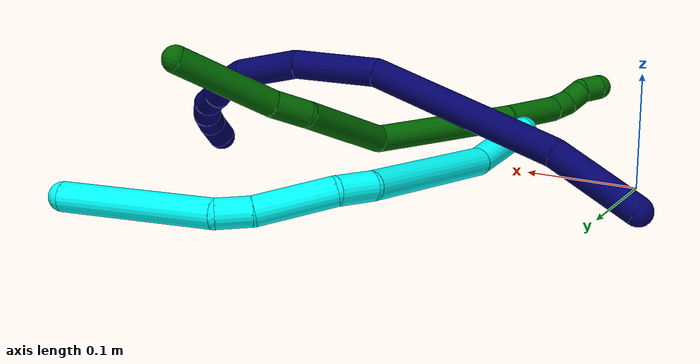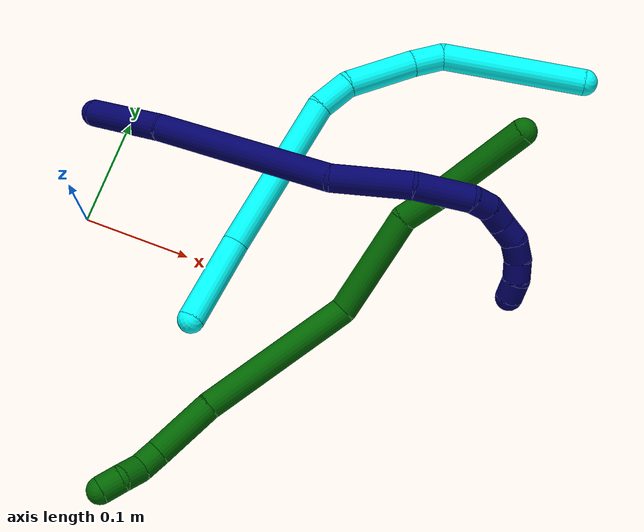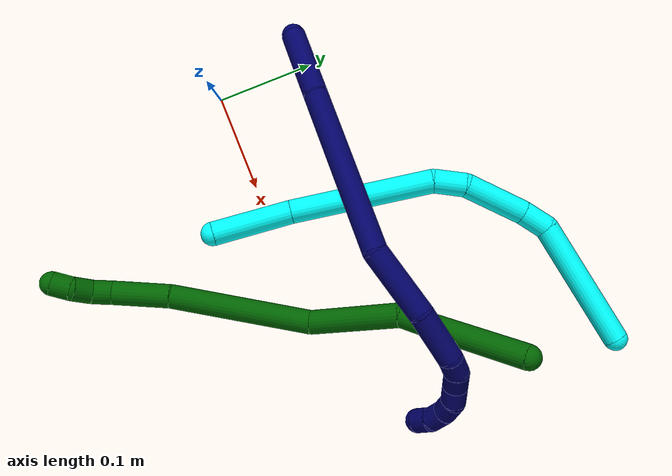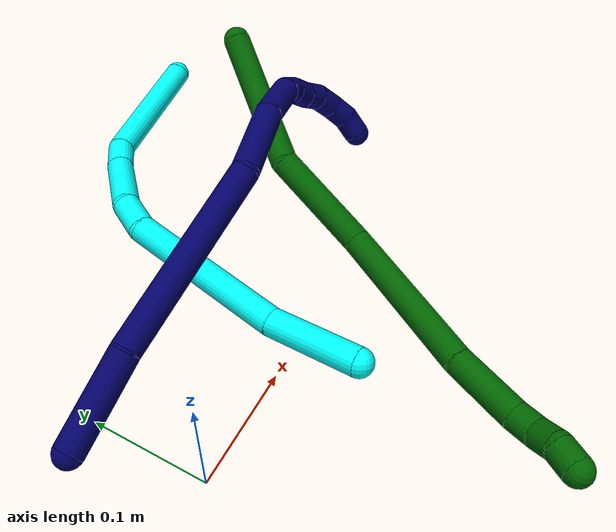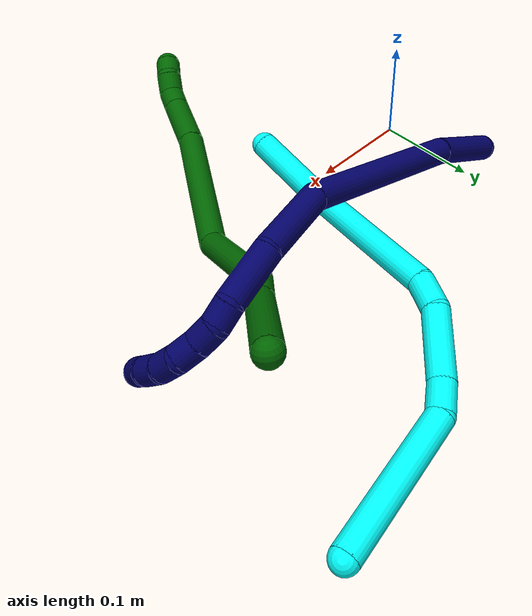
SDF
<sdf version="1.7">
 <world name="default">
  <model name="photoneo_s_sensor">
   <static>1</static>
   <pose>0 0 2 1.57079 1.57079 3.14159</pose>
   <link name="link">
    <inertial><mass>0.1</mass></inertial>
    <sensor name="sensor" type="depth">
     <update_rate>30</update_rate>
     <camera>
      <horizontal_fov>1.22</horizontal_fov>
      <image><width>1920</width><height>1200</height><format>B8G8R8</format></image>
      <clip><near>0.1</near><far>4</far></clip>
      <depth_camera><output>points</output></depth_camera>
     </camera>
     <plugin name="camera_plugin" filename="libgazebo_ros_depth_camera.so">
      <baseline>0.2</baseline>
      <alwaysOn>1</alwaysOn>
      <updateRate>0.0</updateRate>
      <cameraName>camera_ir</cameraName>
      <imageTopicName>/camera/color/image_raw</imageTopicName>
      <cameraInfoTopicName>/camera/color/camera_info</cameraInfoTopicName>
      <depthImageTopicName>/camera/depth/image_raw</depthImageTopicName>
      <depthImageCameraInfoTopicName>/camera/depth/camera_info</depthImageCameraInfoTopicName>
      <pointCloudTopicName>/camera/depth/points</pointCloudTopicName>
      <frameName>fr_optical</frameName>
      <pointCloudCutoff>0.1</pointCloudCutoff>
      <pointCloudCutoffMax>2.0</pointCloudCutoffMax>
      <distortionK1>0</distortionK1>
      <distortionK2>0</distortionK2>
      <distortionK3>0</distortionK3>
      <distortionT1>0</distortionT1>
      <distortionT2>0</distortionT2>
      <CxPrime>0</CxPrime>
      <Cx>0</Cx>
      <Cy>0</Cy>
      <focalLength>0</focalLength>
      <hackBaseline>0</hackBaseline>
     </plugin>
    </sensor>
   </link>
  </model>
  <model name="bin">
   <static>1</static>
   <link name="bottom">
    <collision name="collision-bottom">
     <pose>0 0 -0.01 0 -0 0</pose>
     <geometry><box><size>0.8 0.6 0.02</size></box></geometry>
     <surface>
      <friction><ode><mu>100</mu><mu2>100</mu2></ode></friction>
      <contact><collide_bitmask>65535</collide_bitmask></contact>
     </surface>
    </collision>
   </link>
   <link name="west_wall">
    <collision name="collision-west_wall">
     <pose>-0.41 0 0.1 0 -0 0</pose>
     <geometry><box><size>0.02 0.6 0.2</size></box></geometry>
     <surface>
      <friction><ode><mu>100</mu><mu2>100</mu2></ode></friction>
      <contact><collide_bitmask>65535</collide_bitmask></contact>
     </surface>
    </collision>
   </link>
   <link name="east_wall">
    <collision name="collision-east_wall">
     <pose>0.41 0 0.1 0 -0 0</pose>
     <geometry><box><size>0.02 0.6 0.2</size></box></geometry>
     <surface>
      <friction><ode><mu>100</mu><mu2>100</mu2></ode></friction>
      <contact><collide_bitmask>65535</collide_bitmask></contact>
     </surface>
    </collision>
   </link>
   <link name="south_wall">
    <collision name="collision-south_wall">
     <pose>0 -0.31 0.1 0 -0 0</pose>
     <geometry><box><size>0.8 0.02 0.2</size></box></geometry>
     <surface>
      <friction><ode><mu>100</mu><mu2>100</mu2></ode></friction>
      <contact><collide_bitmask>65535</collide_bitmask></contact>
     </surface>
    </collision>
   </link>
   <link name="north_wall">
    <collision name="collision-north_wall">
     <pose>0 0.31 0.1 0 -0 0</pose>
     <geometry><box><size>0.8 0.02 0.2</size></box></geometry>
     <surface>
      <friction><ode><mu>100</mu><mu2>100</mu2></ode></friction>
      <contact><collide_bitmask>65535</collide_bitmask></contact>
     </surface>
    </collision>
   </link>
  </model>
  <model name="3">
   <static>0</static>
   <link name="3">
    <collision name="collision-cylinder-e_1_1_4">
     <pose>-0.025022 0.033314 -0.004319 -1.69972 -0.640206 0.721491</pose>
     <geometry><cylinder><radius>0.0125</radius><length>0.083776</length></cylinder></geometry>
     <surface>
      <friction><ode><mu>1.16</mu><mu2>1.16</mu2><slip1>0</slip1><slip2>0</slip2></ode></friction>
      <contact><ode><kp>1e+06</kp><kd>1</kd><max_vel>0</max_vel><min_depth>0.001</min_depth></ode></contact>
     </surface>
    </collision>
    <visual name="visual-cylinder-e_1_1_4">
     <pose>-0.025022 0.033314 -0.004319 -1.69972 -0.640206 0.721491</pose>
     <geometry><cylinder><radius>0.0125</radius><length>0.083776</length></cylinder></geometry>
     <material><ambient>0.003922 1 0.996078 1</ambient></material>
    </visual>
    <collision name="collision-cylinder-e_2_4_5">
     <pose>-0.091348 0.124429 -0.033437 -1.9761 -0.581064 0.851745</pose>
     <geometry><cylinder><radius>0.0125</radius><length>0.15049</length></cylinder></geometry>
     <surface>
      <friction><ode><mu>1.16</mu><mu2>1.16</mu2><slip1>0</slip1><slip2>0</slip2></ode></friction>
      <contact><ode><kp>1e+06</kp><kd>1</kd><max_vel>0</max_vel><min_depth>0.001</min_depth></ode></contact>
     </surface>
    </collision>
    <visual name="visual-cylinder-e_2_4_5">
     <pose>-0.091348 0.124429 -0.033437 -1.9761 -0.581064 0.851745</pose>
     <geometry><cylinder><radius>0.0125</radius><length>0.15049</length></cylinder></geometry>
     <material><ambient>0.003922 1 0.996078 1</ambient></material>
    </visual>
    <collision name="collision-cylinder-e_3_5_6">
     <pose>-0.145451 0.190828 -0.064892 -2.22944 -0.8666 1.51216</pose>
     <geometry><cylinder><radius>0.0125</radius><length>0.033592</length></cylinder></geometry>
     <surface>
      <friction><ode><mu>1.16</mu><mu2>1.16</mu2><slip1>0</slip1><slip2>0</slip2></ode></friction>
      <contact><ode><kp>1e+06</kp><kd>1</kd><max_vel>0</max_vel><min_depth>0.001</min_depth></ode></contact>
     </surface>
    </collision>
    <visual name="visual-cylinder-e_3_5_6">
     <pose>-0.145451 0.190828 -0.064892 -2.22944 -0.8666 1.51216</pose>
     <geometry><cylinder><radius>0.0125</radius><length>0.033592</length></cylinder></geometry>
     <material><ambient>0.003922 1 0.996078 1</ambient></material>
    </visual>
    <collision name="collision-cylinder-e_4_6_7">
     <pose>-0.189661 0.206951 -0.080785 -2.45817 -1.20825 2.18997</pose>
     <geometry><cylinder><radius>0.0125</radius><length>0.067184</length></cylinder></geometry>
     <surface>
      <friction><ode><mu>1.16</mu><mu2>1.16</mu2><slip1>0</slip1><slip2>0</slip2></ode></friction>
      <contact><ode><kp>1e+06</kp><kd>1</kd><max_vel>0</max_vel><min_depth>0.001</min_depth></ode></contact>
     </surface>
    </collision>
    <visual name="visual-cylinder-e_4_6_7">
     <pose>-0.189661 0.206951 -0.080785 -2.45817 -1.20825 2.18997</pose>
     <geometry><cylinder><radius>0.0125</radius><length>0.067184</length></cylinder></geometry>
     <material><ambient>0.003922 1 0.996078 1</ambient></material>
    </visual>
    <collision name="collision-cylinder-e_5_7_8">
     <pose>-0.234577 0.215945 -0.096362 -2.91355 -1.12191 2.781</pose>
     <geometry><cylinder><radius>0.0125</radius><length>0.029988</length></cylinder></geometry>
     <surface>
      <friction><ode><mu>1.16</mu><mu2>1.16</mu2><slip1>0</slip1><slip2>0</slip2></ode></friction>
      <contact><ode><kp>1e+06</kp><kd>1</kd><max_vel>0</max_vel><min_depth>0.001</min_depth></ode></contact>
     </surface>
    </collision>
    <visual name="visual-cylinder-e_5_7_8">
     <pose>-0.234577 0.215945 -0.096362 -2.91355 -1.12191 2.781</pose>
     <geometry><cylinder><radius>0.0125</radius><length>0.029988</length></cylinder></geometry>
     <material><ambient>0.003922 1 0.996078 1</ambient></material>
    </visual>
    <collision name="collision-cylinder-e_6_8_2">
     <pose>-0.303803 0.194037 -0.132755 2.4805 -0.971296 -1.98868</pose>
     <geometry><cylinder><radius>0.0125</radius><length>0.13497</length></cylinder></geometry>
     <surface>
      <friction><ode><mu>1.16</mu><mu2>1.16</mu2><slip1>0</slip1><slip2>0</slip2></ode></friction>
      <contact><ode><kp>1e+06</kp><kd>1</kd><max_vel>0</max_vel><min_depth>0.001</min_depth></ode></contact>
     </surface>
    </collision>
    <visual name="visual-cylinder-e_6_8_2">
     <pose>-0.303803 0.194037 -0.132755 2.4805 -0.971296 -1.98868</pose>
     <geometry><cylinder><radius>0.0125</radius><length>0.13497</length></cylinder></geometry>
     <material><ambient>0.003922 1 0.996078 1</ambient></material>
    </visual>
    <collision name="collision-sphere-2">
     <pose>-0.359519 0.170658 -0.16281 0 -0 0</pose>
     <geometry><sphere><radius>0.0125</radius></sphere></geometry>
     <surface>
      <friction><ode><mu>1.16</mu><mu2>1.16</mu2><slip1>0</slip1><slip2>0</slip2></ode></friction>
      <contact><ode><kp>1e+06</kp><kd>1</kd><max_vel>0</max_vel><min_depth>0.001</min_depth></ode></contact>
     </surface>
    </collision>
    <visual name="visual-sphere-2">
     <pose>-0.359519 0.170658 -0.16281 0 -0 0</pose>
     <geometry><sphere><radius>0.0125</radius></sphere></geometry>
     <material><ambient>0.003922 1 0.996078 1</ambient></material>
    </visual>
    <collision name="collision-sphere-4">
     <pose>-0.050045 0.066629 -0.008638 0 -0 0</pose>
     <geometry><sphere><radius>0.0125</radius></sphere></geometry>
     <surface>
      <friction><ode><mu>1.16</mu><mu2>1.16</mu2><slip1>0</slip1><slip2>0</slip2></ode></friction>
      <contact><ode><kp>1e+06</kp><kd>1</kd><max_vel>0</max_vel><min_depth>0.001</min_depth></ode></contact>
     </surface>
    </collision>
    <visual name="visual-sphere-4">
     <pose>-0.050045 0.066629 -0.008638 0 -0 0</pose>
     <geometry><sphere><radius>0.0125</radius></sphere></geometry>
     <material><ambient>0.003922 1 0.996078 1</ambient></material>
    </visual>
    <collision name="collision-sphere-1">
     <geometry><sphere><radius>0.0125</radius></sphere></geometry>
     <surface>
      <friction><ode><mu>1.16</mu><mu2>1.16</mu2><slip1>0</slip1><slip2>0</slip2></ode></friction>
      <contact><ode><kp>1e+06</kp><kd>1</kd><max_vel>0</max_vel><min_depth>0.001</min_depth></ode></contact>
     </surface>
    </collision>
    <visual name="visual-sphere-1">
     <geometry><sphere><radius>0.0125</radius></sphere></geometry>
     <material><ambient>0.003922 1 0.996078 1</ambient></material>
    </visual>
    <collision name="collision-sphere-8">
     <pose>-0.248086 0.217416 -0.1027 0 -0 0</pose>
     <geometry><sphere><radius>0.0125</radius></sphere></geometry>
     <surface>
      <friction><ode><mu>1.16</mu><mu2>1.16</mu2><slip1>0</slip1><slip2>0</slip2></ode></friction>
      <contact><ode><kp>1e+06</kp><kd>1</kd><max_vel>0</max_vel><min_depth>0.001</min_depth></ode></contact>
     </surface>
    </collision>
    <visual name="visual-sphere-8">
     <pose>-0.248086 0.217416 -0.1027 0 -0 0</pose>
     <geometry><sphere><radius>0.0125</radius></sphere></geometry>
     <material><ambient>0.003922 1 0.996078 1</ambient></material>
    </visual>
    <collision name="collision-sphere-5">
     <pose>-0.132651 0.182229 -0.058237 0 -0 0</pose>
     <geometry><sphere><radius>0.0125</radius></sphere></geometry>
     <surface>
      <friction><ode><mu>1.16</mu><mu2>1.16</mu2><slip1>0</slip1><slip2>0</slip2></ode></friction>
      <contact><ode><kp>1e+06</kp><kd>1</kd><max_vel>0</max_vel><min_depth>0.001</min_depth></ode></contact>
     </surface>
    </collision>
    <visual name="visual-sphere-5">
     <pose>-0.132651 0.182229 -0.058237 0 -0 0</pose>
     <geometry><sphere><radius>0.0125</radius></sphere></geometry>
     <material><ambient>0.003922 1 0.996078 1</ambient></material>
    </visual>
    <collision name="collision-sphere-6">
     <pose>-0.158252 0.199428 -0.071547 0 -0 0</pose>
     <geometry><sphere><radius>0.0125</radius></sphere></geometry>
     <surface>
      <friction><ode><mu>1.16</mu><mu2>1.16</mu2><slip1>0</slip1><slip2>0</slip2></ode></friction>
      <contact><ode><kp>1e+06</kp><kd>1</kd><max_vel>0</max_vel><min_depth>0.001</min_depth></ode></contact>
     </surface>
    </collision>
    <visual name="visual-sphere-6">
     <pose>-0.158252 0.199428 -0.071547 0 -0 0</pose>
     <geometry><sphere><radius>0.0125</radius></sphere></geometry>
     <material><ambient>0.003922 1 0.996078 1</ambient></material>
    </visual>
    <collision name="collision-sphere-7">
     <pose>-0.221069 0.214474 -0.090024 0 -0 0</pose>
     <geometry><sphere><radius>0.0125</radius></sphere></geometry>
     <surface>
      <friction><ode><mu>1.16</mu><mu2>1.16</mu2><slip1>0</slip1><slip2>0</slip2></ode></friction>
      <contact><ode><kp>1e+06</kp><kd>1</kd><max_vel>0</max_vel><min_depth>0.001</min_depth></ode></contact>
     </surface>
    </collision>
    <visual name="visual-sphere-7">
     <pose>-0.221069 0.214474 -0.090024 0 -0 0</pose>
     <geometry><sphere><radius>0.0125</radius></sphere></geometry>
     <material><ambient>0.003922 1 0.996078 1</ambient></material>
    </visual>
    <inertial>
     <pose>-0.16302 0.14899 -0.067618 0 -0 0</pose>
     <mass>0.5</mass>
     <inertia>
      <ixx>0.000221</ixx>
      <ixy>0</ixy>
      <ixz>0</ixz>
      <iyy>0.000373</iyy>
      <iyz>0</iyz>
      <izz>0.000183</izz>
     </inertia>
    </inertial>
   </link>
   <pose>0.12959 -0.05752 0.022565 3.0808 -0.475081 -2.58845</pose>
  </model>
  <model name="6">
   <static>0</static>
   <link name="6">
    <collision name="collision-cylinder-e_1_1_4">
     <pose>-0.028558 -0.038671 -0.007267 1.75655 -0.627825 -0.746035</pose>
     <geometry><cylinder><radius>0.0125</radius><length>0.097239</length></cylinder></geometry>
     <surface>
      <friction><ode><mu>1.16</mu><mu2>1.16</mu2><slip1>0</slip1><slip2>0</slip2></ode></friction>
      <contact><ode><kp>1e+06</kp><kd>1</kd><max_vel>0</max_vel><min_depth>0.001</min_depth></ode></contact>
     </surface>
    </collision>
    <visual name="visual-cylinder-e_1_1_4">
     <pose>-0.028558 -0.038671 -0.007267 1.75655 -0.627825 -0.746035</pose>
     <geometry><cylinder><radius>0.0125</radius><length>0.097239</length></cylinder></geometry>
     <material><ambient>0 0.392157 0.003922 1</ambient></material>
    </visual>
    <collision name="collision-cylinder-e_2_4_5">
     <pose>-0.067928 -0.090792 -0.015013 1.60636 -0.676759 -0.699345</pose>
     <geometry><cylinder><radius>0.0125</radius><length>0.034527</length></cylinder></geometry>
     <surface>
      <friction><ode><mu>1.16</mu><mu2>1.16</mu2><slip1>0</slip1><slip2>0</slip2></ode></friction>
      <contact><ode><kp>1e+06</kp><kd>1</kd><max_vel>0</max_vel><min_depth>0.001</min_depth></ode></contact>
     </surface>
    </collision>
    <visual name="visual-cylinder-e_2_4_5">
     <pose>-0.067928 -0.090792 -0.015013 1.60636 -0.676759 -0.699345</pose>
     <geometry><cylinder><radius>0.0125</radius><length>0.034527</length></cylinder></geometry>
     <material><ambient>0 0.392157 0.003922 1</ambient></material>
    </visual>
    <collision name="collision-cylinder-e_3_5_6">
     <pose>-0.09208 -0.151942 -0.018797 1.63999 -0.272087 -0.291332</pose>
     <geometry><cylinder><radius>0.0125</radius><length>0.09928</length></cylinder></geometry>
     <surface>
      <friction><ode><mu>1.16</mu><mu2>1.16</mu2><slip1>0</slip1><slip2>0</slip2></ode></friction>
      <contact><ode><kp>1e+06</kp><kd>1</kd><max_vel>0</max_vel><min_depth>0.001</min_depth></ode></contact>
     </surface>
    </collision>
    <visual name="visual-cylinder-e_3_5_6">
     <pose>-0.09208 -0.151942 -0.018797 1.63999 -0.272087 -0.291332</pose>
     <geometry><cylinder><radius>0.0125</radius><length>0.09928</length></cylinder></geometry>
     <material><ambient>0 0.392157 0.003922 1</ambient></material>
    </visual>
    <collision name="collision-cylinder-e_4_6_7">
     <pose>-0.14213 -0.257791 0.004723 1.13856 -0.520504 -0.337586</pose>
     <geometry><cylinder><radius>0.0125</radius><length>0.147629</length></cylinder></geometry>
     <surface>
      <friction><ode><mu>1.16</mu><mu2>1.16</mu2><slip1>0</slip1><slip2>0</slip2></ode></friction>
      <contact><ode><kp>1e+06</kp><kd>1</kd><max_vel>0</max_vel><min_depth>0.001</min_depth></ode></contact>
     </surface>
    </collision>
    <visual name="visual-cylinder-e_4_6_7">
     <pose>-0.14213 -0.257791 0.004723 1.13856 -0.520504 -0.337586</pose>
     <geometry><cylinder><radius>0.0125</radius><length>0.147629</length></cylinder></geometry>
     <material><ambient>0 0.392157 0.003922 1</ambient></material>
    </visual>
    <collision name="collision-cylinder-e_5_7_8">
     <pose>-0.190462 -0.34119 0.042341 1.16688 -0.400424 -0.266322</pose>
     <geometry><cylinder><radius>0.0125</radius><length>0.059635</length></cylinder></geometry>
     <surface>
      <friction><ode><mu>1.16</mu><mu2>1.16</mu2><slip1>0</slip1><slip2>0</slip2></ode></friction>
      <contact><ode><kp>1e+06</kp><kd>1</kd><max_vel>0</max_vel><min_depth>0.001</min_depth></ode></contact>
     </surface>
    </collision>
    <visual name="visual-cylinder-e_5_7_8">
     <pose>-0.190462 -0.34119 0.042341 1.16688 -0.400424 -0.266322</pose>
     <geometry><cylinder><radius>0.0125</radius><length>0.059635</length></cylinder></geometry>
     <material><ambient>0 0.392157 0.003922 1</ambient></material>
    </visual>
    <collision name="collision-cylinder-e_6_8_9">
     <pose>-0.205689 -0.374646 0.058412 0.999108 -0.353768 -0.194483</pose>
     <geometry><cylinder><radius>0.0125</radius><length>0.020805</length></cylinder></geometry>
     <surface>
      <friction><ode><mu>1.16</mu><mu2>1.16</mu2><slip1>0</slip1><slip2>0</slip2></ode></friction>
      <contact><ode><kp>1e+06</kp><kd>1</kd><max_vel>0</max_vel><min_depth>0.001</min_depth></ode></contact>
     </surface>
    </collision>
    <visual name="visual-cylinder-e_6_8_9">
     <pose>-0.205689 -0.374646 0.058412 0.999108 -0.353768 -0.194483</pose>
     <geometry><cylinder><radius>0.0125</radius><length>0.020805</length></cylinder></geometry>
     <material><ambient>0 0.392157 0.003922 1</ambient></material>
    </visual>
    <collision name="collision-cylinder-e_7_9_10">
     <pose>-0.2131 -0.388217 0.071781 0.585695 -0.373754 -0.1139</pose>
     <geometry><cylinder><radius>0.0125</radius><length>0.020852</length></cylinder></geometry>
     <surface>
      <friction><ode><mu>1.16</mu><mu2>1.16</mu2><slip1>0</slip1><slip2>0</slip2></ode></friction>
      <contact><ode><kp>1e+06</kp><kd>1</kd><max_vel>0</max_vel><min_depth>0.001</min_depth></ode></contact>
     </surface>
    </collision>
    <visual name="visual-cylinder-e_7_9_10">
     <pose>-0.2131 -0.388217 0.071781 0.585695 -0.373754 -0.1139</pose>
     <geometry><cylinder><radius>0.0125</radius><length>0.020852</length></cylinder></geometry>
     <material><ambient>0 0.392157 0.003922 1</ambient></material>
    </visual>
    <collision name="collision-cylinder-e_8_10_2">
     <pose>-0.222455 -0.400663 0.084276 1.01407 -0.587103 -0.332716</pose>
     <geometry><cylinder><radius>0.0125</radius><length>0.020033</length></cylinder></geometry>
     <surface>
      <friction><ode><mu>1.16</mu><mu2>1.16</mu2><slip1>0</slip1><slip2>0</slip2></ode></friction>
      <contact><ode><kp>1e+06</kp><kd>1</kd><max_vel>0</max_vel><min_depth>0.001</min_depth></ode></contact>
     </surface>
    </collision>
    <visual name="visual-cylinder-e_8_10_2">
     <pose>-0.222455 -0.400663 0.084276 1.01407 -0.587103 -0.332716</pose>
     <geometry><cylinder><radius>0.0125</radius><length>0.020033</length></cylinder></geometry>
     <material><ambient>0 0.392157 0.003922 1</ambient></material>
    </visual>
    <collision name="collision-sphere-2">
     <pose>-0.228004 -0.407743 0.088682 0 -0 0</pose>
     <geometry><sphere><radius>0.0125</radius></sphere></geometry>
     <surface>
      <friction><ode><mu>1.16</mu><mu2>1.16</mu2><slip1>0</slip1><slip2>0</slip2></ode></friction>
      <contact><ode><kp>1e+06</kp><kd>1</kd><max_vel>0</max_vel><min_depth>0.001</min_depth></ode></contact>
     </surface>
    </collision>
    <visual name="visual-sphere-2">
     <pose>-0.228004 -0.407743 0.088682 0 -0 0</pose>
     <geometry><sphere><radius>0.0125</radius></sphere></geometry>
     <material><ambient>0 0.392157 0.003922 1</ambient></material>
    </visual>
    <collision name="collision-sphere-10">
     <pose>-0.216906 -0.393583 0.079869 0 -0 0</pose>
     <geometry><sphere><radius>0.0125</radius></sphere></geometry>
     <surface>
      <friction><ode><mu>1.16</mu><mu2>1.16</mu2><slip1>0</slip1><slip2>0</slip2></ode></friction>
      <contact><ode><kp>1e+06</kp><kd>1</kd><max_vel>0</max_vel><min_depth>0.001</min_depth></ode></contact>
     </surface>
    </collision>
    <visual name="visual-sphere-10">
     <pose>-0.216906 -0.393583 0.079869 0 -0 0</pose>
     <geometry><sphere><radius>0.0125</radius></sphere></geometry>
     <material><ambient>0 0.392157 0.003922 1</ambient></material>
    </visual>
    <collision name="collision-sphere-9">
     <pose>-0.209293 -0.382852 0.063692 0 -0 0</pose>
     <geometry><sphere><radius>0.0125</radius></sphere></geometry>
     <surface>
      <friction><ode><mu>1.16</mu><mu2>1.16</mu2><slip1>0</slip1><slip2>0</slip2></ode></friction>
      <contact><ode><kp>1e+06</kp><kd>1</kd><max_vel>0</max_vel><min_depth>0.001</min_depth></ode></contact>
     </surface>
    </collision>
    <visual name="visual-sphere-9">
     <pose>-0.209293 -0.382852 0.063692 0 -0 0</pose>
     <geometry><sphere><radius>0.0125</radius></sphere></geometry>
     <material><ambient>0 0.392157 0.003922 1</ambient></material>
    </visual>
    <collision name="collision-sphere-4">
     <pose>-0.057117 -0.077342 -0.014534 0 -0 0</pose>
     <geometry><sphere><radius>0.0125</radius></sphere></geometry>
     <surface>
      <friction><ode><mu>1.16</mu><mu2>1.16</mu2><slip1>0</slip1><slip2>0</slip2></ode></friction>
      <contact><ode><kp>1e+06</kp><kd>1</kd><max_vel>0</max_vel><min_depth>0.001</min_depth></ode></contact>
     </surface>
    </collision>
    <visual name="visual-sphere-4">
     <pose>-0.057117 -0.077342 -0.014534 0 -0 0</pose>
     <geometry><sphere><radius>0.0125</radius></sphere></geometry>
     <material><ambient>0 0.392157 0.003922 1</ambient></material>
    </visual>
    <collision name="collision-sphere-1">
     <geometry><sphere><radius>0.0125</radius></sphere></geometry>
     <surface>
      <friction><ode><mu>1.16</mu><mu2>1.16</mu2><slip1>0</slip1><slip2>0</slip2></ode></friction>
      <contact><ode><kp>1e+06</kp><kd>1</kd><max_vel>0</max_vel><min_depth>0.001</min_depth></ode></contact>
     </surface>
    </collision>
    <visual name="visual-sphere-1">
     <geometry><sphere><radius>0.0125</radius></sphere></geometry>
     <material><ambient>0 0.392157 0.003922 1</ambient></material>
    </visual>
    <collision name="collision-sphere-8">
     <pose>-0.202085 -0.366439 0.053133 0 -0 0</pose>
     <geometry><sphere><radius>0.0125</radius></sphere></geometry>
     <surface>
      <friction><ode><mu>1.16</mu><mu2>1.16</mu2><slip1>0</slip1><slip2>0</slip2></ode></friction>
      <contact><ode><kp>1e+06</kp><kd>1</kd><max_vel>0</max_vel><min_depth>0.001</min_depth></ode></contact>
     </surface>
    </collision>
    <visual name="visual-sphere-8">
     <pose>-0.202085 -0.366439 0.053133 0 -0 0</pose>
     <geometry><sphere><radius>0.0125</radius></sphere></geometry>
     <material><ambient>0 0.392157 0.003922 1</ambient></material>
    </visual>
    <collision name="collision-sphere-5">
     <pose>-0.07874 -0.104242 -0.015491 0 -0 0</pose>
     <geometry><sphere><radius>0.0125</radius></sphere></geometry>
     <surface>
      <friction><ode><mu>1.16</mu><mu2>1.16</mu2><slip1>0</slip1><slip2>0</slip2></ode></friction>
      <contact><ode><kp>1e+06</kp><kd>1</kd><max_vel>0</max_vel><min_depth>0.001</min_depth></ode></contact>
     </surface>
    </collision>
    <visual name="visual-sphere-5">
     <pose>-0.07874 -0.104242 -0.015491 0 -0 0</pose>
     <geometry><sphere><radius>0.0125</radius></sphere></geometry>
     <material><ambient>0 0.392157 0.003922 1</ambient></material>
    </visual>
    <collision name="collision-sphere-6">
     <pose>-0.105421 -0.199641 -0.022103 0 -0 0</pose>
     <geometry><sphere><radius>0.0125</radius></sphere></geometry>
     <surface>
      <friction><ode><mu>1.16</mu><mu2>1.16</mu2><slip1>0</slip1><slip2>0</slip2></ode></friction>
      <contact><ode><kp>1e+06</kp><kd>1</kd><max_vel>0</max_vel><min_depth>0.001</min_depth></ode></contact>
     </surface>
    </collision>
    <visual name="visual-sphere-6">
     <pose>-0.105421 -0.199641 -0.022103 0 -0 0</pose>
     <geometry><sphere><radius>0.0125</radius></sphere></geometry>
     <material><ambient>0 0.392157 0.003922 1</ambient></material>
    </visual>
    <collision name="collision-sphere-7">
     <pose>-0.178839 -0.315941 0.031549 0 -0 0</pose>
     <geometry><sphere><radius>0.0125</radius></sphere></geometry>
     <surface>
      <friction><ode><mu>1.16</mu><mu2>1.16</mu2><slip1>0</slip1><slip2>0</slip2></ode></friction>
      <contact><ode><kp>1e+06</kp><kd>1</kd><max_vel>0</max_vel><min_depth>0.001</min_depth></ode></contact>
     </surface>
    </collision>
    <visual name="visual-sphere-7">
     <pose>-0.178839 -0.315941 0.031549 0 -0 0</pose>
     <geometry><sphere><radius>0.0125</radius></sphere></geometry>
     <material><ambient>0 0.392157 0.003922 1</ambient></material>
    </visual>
    <inertial>
     <pose>-0.119568 -0.208601 0.009063 0 -0 0</pose>
     <mass>0.5</mass>
     <inertia><ixx>0.000203</ixx><ixy>0</ixy><ixz>0</ixz><iyy>-1e-06</iyy><iyz>0</iyz><izz>0.000612</izz></inertia>
    </inertial>
   </link>
   <pose>0.348893 0.181697 0.109917 0.313677 -0.160644 -0.03361</pose>
  </model>
  <model name="7">
   <static>0</static>
   <link name="7">
    <collision name="collision-cylinder-e_1_1_4">
     <pose>0.008572 -0.002482 0.039606 0.062584 0.212745 0.006685</pose>
     <geometry><cylinder><radius>0.0125</radius><length>0.081199</length></cylinder></geometry>
     <surface>
      <friction><ode><mu>1.16</mu><mu2>1.16</mu2><slip1>0</slip1><slip2>0</slip2></ode></friction>
      <contact><ode><kp>1e+06</kp><kd>1</kd><max_vel>0</max_vel><min_depth>0.001</min_depth></ode></contact>
     </surface>
    </collision>
    <visual name="visual-cylinder-e_1_1_4">
     <pose>0.008572 -0.002482 0.039606 0.062584 0.212745 0.006685</pose>
     <geometry><cylinder><radius>0.0125</radius><length>0.081199</length></cylinder></geometry>
     <material><ambient>0.003922 0 0.403922 1</ambient></material>
    </visual>
    <collision name="collision-cylinder-e_2_4_5">
     <pose>0.051329 -0.008265 0.158875 0.041418 0.405042 0.008506</pose>
     <geometry><cylinder><radius>0.0125</radius><length>0.1735</length></cylinder></geometry>
     <surface>
      <friction><ode><mu>1.16</mu><mu2>1.16</mu2><slip1>0</slip1><slip2>0</slip2></ode></friction>
      <contact><ode><kp>1e+06</kp><kd>1</kd><max_vel>0</max_vel><min_depth>0.001</min_depth></ode></contact>
     </surface>
    </collision>
    <visual name="visual-cylinder-e_2_4_5">
     <pose>0.051329 -0.008265 0.158875 0.041418 0.405042 0.008506</pose>
     <geometry><cylinder><radius>0.0125</radius><length>0.1735</length></cylinder></geometry>
     <material><ambient>0.003922 0 0.403922 1</ambient></material>
    </visual>
    <collision name="collision-cylinder-e_3_5_6">
     <pose>0.10558 -0.002107 0.267251 -0.318256 0.586002 -0.096756</pose>
     <geometry><cylinder><radius>0.0125</radius><length>0.072569</length></cylinder></geometry>
     <surface>
      <friction><ode><mu>1.16</mu><mu2>1.16</mu2><slip1>0</slip1><slip2>0</slip2></ode></friction>
      <contact><ode><kp>1e+06</kp><kd>1</kd><max_vel>0</max_vel><min_depth>0.001</min_depth></ode></contact>
     </surface>
    </collision>
    <visual name="visual-cylinder-e_3_5_6">
     <pose>0.10558 -0.002107 0.267251 -0.318256 0.586002 -0.096756</pose>
     <geometry><cylinder><radius>0.0125</radius><length>0.072569</length></cylinder></geometry>
     <material><ambient>0.003922 0 0.403922 1</ambient></material>
    </visual>
    <collision name="collision-cylinder-e_4_6_7">
     <pose>0.145529 0.013493 0.312017 -0.365348 0.857965 -0.16859</pose>
     <geometry><cylinder><radius>0.0125</radius><length>0.052563</length></cylinder></geometry>
     <surface>
      <friction><ode><mu>1.16</mu><mu2>1.16</mu2><slip1>0</slip1><slip2>0</slip2></ode></friction>
      <contact><ode><kp>1e+06</kp><kd>1</kd><max_vel>0</max_vel><min_depth>0.001</min_depth></ode></contact>
     </surface>
    </collision>
    <visual name="visual-cylinder-e_4_6_7">
     <pose>0.145529 0.013493 0.312017 -0.365348 0.857965 -0.16859</pose>
     <geometry><cylinder><radius>0.0125</radius><length>0.052563</length></cylinder></geometry>
     <material><ambient>0.003922 0 0.403922 1</ambient></material>
    </visual>
    <collision name="collision-cylinder-e_5_7_8">
     <pose>0.174863 0.020911 0.331153 -0.392803 1.23134 -0.279657</pose>
     <geometry><cylinder><radius>0.0125</radius><length>0.020047</length></cylinder></geometry>
     <surface>
      <friction><ode><mu>1.16</mu><mu2>1.16</mu2><slip1>0</slip1><slip2>0</slip2></ode></friction>
      <contact><ode><kp>1e+06</kp><kd>1</kd><max_vel>0</max_vel><min_depth>0.001</min_depth></ode></contact>
     </surface>
    </collision>
    <visual name="visual-cylinder-e_5_7_8">
     <pose>0.174863 0.020911 0.331153 -0.392803 1.23134 -0.279657</pose>
     <geometry><cylinder><radius>0.0125</radius><length>0.020047</length></cylinder></geometry>
     <material><ambient>0.003922 0 0.403922 1</ambient></material>
    </visual>
    <collision name="collision-cylinder-e_6_8_9">
     <pose>0.194049 0.020087 0.335507 1.02702 1.32365 0.827933</pose>
     <geometry><cylinder><radius>0.0125</radius><length>0.020079</length></cylinder></geometry>
     <surface>
      <friction><ode><mu>1.16</mu><mu2>1.16</mu2><slip1>0</slip1><slip2>0</slip2></ode></friction>
      <contact><ode><kp>1e+06</kp><kd>1</kd><max_vel>0</max_vel><min_depth>0.001</min_depth></ode></contact>
     </surface>
    </collision>
    <visual name="visual-cylinder-e_6_8_9">
     <pose>0.194049 0.020087 0.335507 1.02702 1.32365 0.827933</pose>
     <geometry><cylinder><radius>0.0125</radius><length>0.020079</length></cylinder></geometry>
     <material><ambient>0.003922 0 0.403922 1</ambient></material>
    </visual>
    <collision name="collision-cylinder-e_7_9_10">
     <pose>0.213028 0.015166 0.339361 0.82902 1.17862 0.572194</pose>
     <geometry><cylinder><radius>0.0125</radius><length>0.02001</length></cylinder></geometry>
     <surface>
      <friction><ode><mu>1.16</mu><mu2>1.16</mu2><slip1>0</slip1><slip2>0</slip2></ode></friction>
      <contact><ode><kp>1e+06</kp><kd>1</kd><max_vel>0</max_vel><min_depth>0.001</min_depth></ode></contact>
     </surface>
    </collision>
    <visual name="visual-cylinder-e_7_9_10">
     <pose>0.213028 0.015166 0.339361 0.82902 1.17862 0.572194</pose>
     <geometry><cylinder><radius>0.0125</radius><length>0.02001</length></cylinder></geometry>
     <material><ambient>0.003922 0 0.403922 1</ambient></material>
    </visual>
    <collision name="collision-cylinder-e_8_10_11">
     <pose>0.230928 0.007418 0.340925 1.77474 1.04409 1.23006</pose>
     <geometry><cylinder><radius>0.0125</radius><length>0.020023</length></cylinder></geometry>
     <surface>
      <friction><ode><mu>1.16</mu><mu2>1.16</mu2><slip1>0</slip1><slip2>0</slip2></ode></friction>
      <contact><ode><kp>1e+06</kp><kd>1</kd><max_vel>0</max_vel><min_depth>0.001</min_depth></ode></contact>
     </surface>
    </collision>
    <visual name="visual-cylinder-e_8_10_11">
     <pose>0.230928 0.007418 0.340925 1.77474 1.04409 1.23006</pose>
     <geometry><cylinder><radius>0.0125</radius><length>0.020023</length></cylinder></geometry>
     <material><ambient>0.003922 0 0.403922 1</ambient></material>
    </visual>
    <collision name="collision-cylinder-e_9_11_12">
     <pose>0.246651 -0.004193 0.337577 1.90608 0.784731 1.05478</pose>
     <geometry><cylinder><radius>0.0125</radius><length>0.020005</length></cylinder></geometry>
     <surface>
      <friction><ode><mu>1.16</mu><mu2>1.16</mu2><slip1>0</slip1><slip2>0</slip2></ode></friction>
      <contact><ode><kp>1e+06</kp><kd>1</kd><max_vel>0</max_vel><min_depth>0.001</min_depth></ode></contact>
     </surface>
    </collision>
    <visual name="visual-cylinder-e_9_11_12">
     <pose>0.246651 -0.004193 0.337577 1.90608 0.784731 1.05478</pose>
     <geometry><cylinder><radius>0.0125</radius><length>0.020005</length></cylinder></geometry>
     <material><ambient>0.003922 0 0.403922 1</ambient></material>
    </visual>
    <collision name="collision-cylinder-e_10_12_2">
     <pose>0.259715 -0.016954 0.330037 2.27969 0.642825 1.25354</pose>
     <geometry><cylinder><radius>0.0125</radius><length>0.020005</length></cylinder></geometry>
     <surface>
      <friction><ode><mu>1.16</mu><mu2>1.16</mu2><slip1>0</slip1><slip2>0</slip2></ode></friction>
      <contact><ode><kp>1e+06</kp><kd>1</kd><max_vel>0</max_vel><min_depth>0.001</min_depth></ode></contact>
     </surface>
    </collision>
    <visual name="visual-cylinder-e_10_12_2">
     <pose>0.259715 -0.016954 0.330037 2.27969 0.642825 1.25354</pose>
     <geometry><cylinder><radius>0.0125</radius><length>0.020005</length></cylinder></geometry>
     <material><ambient>0.003922 0 0.403922 1</ambient></material>
    </visual>
    <collision name="collision-sphere-2">
     <pose>0.265712 -0.023031 0.324825 0 -0 0</pose>
     <geometry><sphere><radius>0.0125</radius></sphere></geometry>
     <surface>
      <friction><ode><mu>1.16</mu><mu2>1.16</mu2><slip1>0</slip1><slip2>0</slip2></ode></friction>
      <contact><ode><kp>1e+06</kp><kd>1</kd><max_vel>0</max_vel><min_depth>0.001</min_depth></ode></contact>
     </surface>
    </collision>
    <visual name="visual-sphere-2">
     <pose>0.265712 -0.023031 0.324825 0 -0 0</pose>
     <geometry><sphere><radius>0.0125</radius></sphere></geometry>
     <material><ambient>0.003922 0 0.403922 1</ambient></material>
    </visual>
    <collision name="collision-sphere-12">
     <pose>0.253719 -0.010877 0.335248 0 -0 0</pose>
     <geometry><sphere><radius>0.0125</radius></sphere></geometry>
     <surface>
      <friction><ode><mu>1.16</mu><mu2>1.16</mu2><slip1>0</slip1><slip2>0</slip2></ode></friction>
      <contact><ode><kp>1e+06</kp><kd>1</kd><max_vel>0</max_vel><min_depth>0.001</min_depth></ode></contact>
     </surface>
    </collision>
    <visual name="visual-sphere-12">
     <pose>0.253719 -0.010877 0.335248 0 -0 0</pose>
     <geometry><sphere><radius>0.0125</radius></sphere></geometry>
     <material><ambient>0.003922 0 0.403922 1</ambient></material>
    </visual>
    <collision name="collision-sphere-11">
     <pose>0.239583 0.00249 0.339906 0 -0 0</pose>
     <geometry><sphere><radius>0.0125</radius></sphere></geometry>
     <surface>
      <friction><ode><mu>1.16</mu><mu2>1.16</mu2><slip1>0</slip1><slip2>0</slip2></ode></friction>
      <contact><ode><kp>1e+06</kp><kd>1</kd><max_vel>0</max_vel><min_depth>0.001</min_depth></ode></contact>
     </surface>
    </collision>
    <visual name="visual-sphere-11">
     <pose>0.239583 0.00249 0.339906 0 -0 0</pose>
     <geometry><sphere><radius>0.0125</radius></sphere></geometry>
     <material><ambient>0.003922 0 0.403922 1</ambient></material>
    </visual>
    <collision name="collision-sphere-10">
     <pose>0.222274 0.012347 0.341945 0 -0 0</pose>
     <geometry><sphere><radius>0.0125</radius></sphere></geometry>
     <surface>
      <friction><ode><mu>1.16</mu><mu2>1.16</mu2><slip1>0</slip1><slip2>0</slip2></ode></friction>
      <contact><ode><kp>1e+06</kp><kd>1</kd><max_vel>0</max_vel><min_depth>0.001</min_depth></ode></contact>
     </surface>
    </collision>
    <visual name="visual-sphere-10">
     <pose>0.222274 0.012347 0.341945 0 -0 0</pose>
     <geometry><sphere><radius>0.0125</radius></sphere></geometry>
     <material><ambient>0.003922 0 0.403922 1</ambient></material>
    </visual>
    <collision name="collision-sphere-9">
     <pose>0.203783 0.017985 0.336778 0 -0 0</pose>
     <geometry><sphere><radius>0.0125</radius></sphere></geometry>
     <surface>
      <friction><ode><mu>1.16</mu><mu2>1.16</mu2><slip1>0</slip1><slip2>0</slip2></ode></friction>
      <contact><ode><kp>1e+06</kp><kd>1</kd><max_vel>0</max_vel><min_depth>0.001</min_depth></ode></contact>
     </surface>
    </collision>
    <visual name="visual-sphere-9">
     <pose>0.203783 0.017985 0.336778 0 -0 0</pose>
     <geometry><sphere><radius>0.0125</radius></sphere></geometry>
     <material><ambient>0.003922 0 0.403922 1</ambient></material>
    </visual>
    <collision name="collision-sphere-4">
     <pose>0.017145 -0.004964 0.079213 0 -0 0</pose>
     <geometry><sphere><radius>0.0125</radius></sphere></geometry>
     <surface>
      <friction><ode><mu>1.16</mu><mu2>1.16</mu2><slip1>0</slip1><slip2>0</slip2></ode></friction>
      <contact><ode><kp>1e+06</kp><kd>1</kd><max_vel>0</max_vel><min_depth>0.001</min_depth></ode></contact>
     </surface>
    </collision>
    <visual name="visual-sphere-4">
     <pose>0.017145 -0.004964 0.079213 0 -0 0</pose>
     <geometry><sphere><radius>0.0125</radius></sphere></geometry>
     <material><ambient>0.003922 0 0.403922 1</ambient></material>
    </visual>
    <collision name="collision-sphere-1">
     <geometry><sphere><radius>0.0125</radius></sphere></geometry>
     <surface>
      <friction><ode><mu>1.16</mu><mu2>1.16</mu2><slip1>0</slip1><slip2>0</slip2></ode></friction>
      <contact><ode><kp>1e+06</kp><kd>1</kd><max_vel>0</max_vel><min_depth>0.001</min_depth></ode></contact>
     </surface>
    </collision>
    <visual name="visual-sphere-1">
     <geometry><sphere><radius>0.0125</radius></sphere></geometry>
     <material><ambient>0.003922 0 0.403922 1</ambient></material>
    </visual>
    <collision name="collision-sphere-8">
     <pose>0.184314 0.022189 0.334236 0 -0 0</pose>
     <geometry><sphere><radius>0.0125</radius></sphere></geometry>
     <surface>
      <friction><ode><mu>1.16</mu><mu2>1.16</mu2><slip1>0</slip1><slip2>0</slip2></ode></friction>
      <contact><ode><kp>1e+06</kp><kd>1</kd><max_vel>0</max_vel><min_depth>0.001</min_depth></ode></contact>
     </surface>
    </collision>
    <visual name="visual-sphere-8">
     <pose>0.184314 0.022189 0.334236 0 -0 0</pose>
     <geometry><sphere><radius>0.0125</radius></sphere></geometry>
     <material><ambient>0.003922 0 0.403922 1</ambient></material>
    </visual>
    <collision name="collision-sphere-5">
     <pose>0.085514 -0.011567 0.238538 0 -0 0</pose>
     <geometry><sphere><radius>0.0125</radius></sphere></geometry>
     <surface>
      <friction><ode><mu>1.16</mu><mu2>1.16</mu2><slip1>0</slip1><slip2>0</slip2></ode></friction>
      <contact><ode><kp>1e+06</kp><kd>1</kd><max_vel>0</max_vel><min_depth>0.001</min_depth></ode></contact>
     </surface>
    </collision>
    <visual name="visual-sphere-5">
     <pose>0.085514 -0.011567 0.238538 0 -0 0</pose>
     <geometry><sphere><radius>0.0125</radius></sphere></geometry>
     <material><ambient>0.003922 0 0.403922 1</ambient></material>
    </visual>
    <collision name="collision-sphere-6">
     <pose>0.125647 0.007353 0.295963 0 -0 0</pose>
     <geometry><sphere><radius>0.0125</radius></sphere></geometry>
     <surface>
      <friction><ode><mu>1.16</mu><mu2>1.16</mu2><slip1>0</slip1><slip2>0</slip2></ode></friction>
      <contact><ode><kp>1e+06</kp><kd>1</kd><max_vel>0</max_vel><min_depth>0.001</min_depth></ode></contact>
     </surface>
    </collision>
    <visual name="visual-sphere-6">
     <pose>0.125647 0.007353 0.295963 0 -0 0</pose>
     <geometry><sphere><radius>0.0125</radius></sphere></geometry>
     <material><ambient>0.003922 0 0.403922 1</ambient></material>
    </visual>
    <collision name="collision-sphere-7">
     <pose>0.165412 0.019634 0.32807 0 -0 0</pose>
     <geometry><sphere><radius>0.0125</radius></sphere></geometry>
     <surface>
      <friction><ode><mu>1.16</mu><mu2>1.16</mu2><slip1>0</slip1><slip2>0</slip2></ode></friction>
      <contact><ode><kp>1e+06</kp><kd>1</kd><max_vel>0</max_vel><min_depth>0.001</min_depth></ode></contact>
     </surface>
    </collision>
    <visual name="visual-sphere-7">
     <pose>0.165412 0.019634 0.32807 0 -0 0</pose>
     <geometry><sphere><radius>0.0125</radius></sphere></geometry>
     <material><ambient>0.003922 0 0.403922 1</ambient></material>
    </visual>
    <inertial>
     <pose>0.102662 -0.000455 0.213847 0 -0 0</pose>
     <mass>0.5</mass>
     <inertia>
      <ixx>0.000516</ixx>
      <ixy>0</ixy>
      <ixz>0</ixz>
      <iyy>0.000543</iyy>
      <iyz>0</iyz>
      <izz>-0.000186</izz>
     </inertia>
    </inertial>
   </link>
   <pose>-0.032258 0.095839 0.011499 -0.126988 0.885249 -0.113685</pose>
  </model>
 </world>
</sdf>
